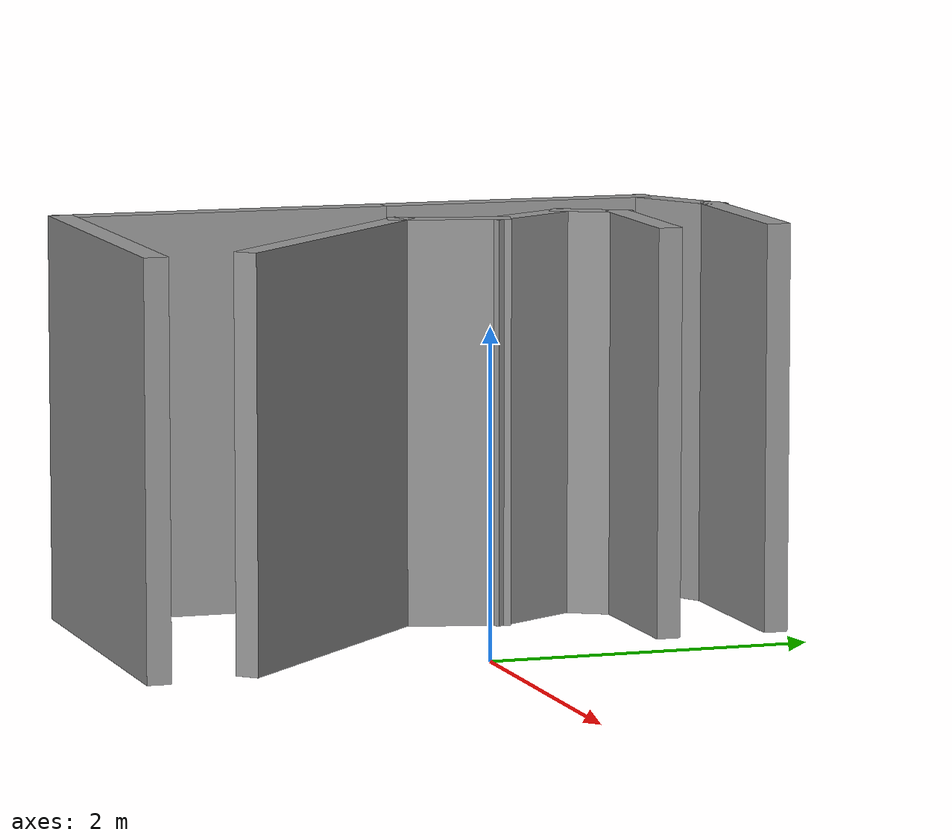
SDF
<?xml version='1.0'?>
<sdf version='1.6'>
  <model name='Untitled'>
    <pose frame=''>-1.03683 -0.037191 0 0 -0 0</pose>
    <link name='Wall_10'>
      <collision name='Wall_10_Collision'>
        <geometry>
          <box>
            <size>2 0.15 2.5</size>
          </box>
        </geometry>
        <pose frame=''>0 0 1.25 0 -0 0</pose>
      </collision>
      <visual name='Wall_10_Visual'>
        <pose frame=''>0 0 1.25 0 -0 0</pose>
        <geometry>
          <box>
            <size>2 0.15 2.5</size>
          </box>
        </geometry>
        <material>
          <script>
            <uri>file://media/materials/scripts/gazebo.material</uri>
            <name>Gazebo/Grey</name>
          </script>
          <ambient>1 1 1 1</ambient>
        </material>
      </visual>
      <pose frame=''>0.35664 -0.75882 0 0 -0 2.35619</pose>
    </link>
    <link name='Wall_12'>
      <collision name='Wall_12_Collision'>
        <geometry>
          <box>
            <size>2.26002 0.15 2.5</size>
          </box>
        </geometry>
        <pose frame=''>0 0 1.25 0 -0 0</pose>
      </collision>
      <visual name='Wall_12_Visual'>
        <pose frame=''>0 0 1.25 0 -0 0</pose>
        <geometry>
          <box>
            <size>2.26002 0.15 2.5</size>
          </box>
        </geometry>
        <material>
          <script>
            <uri>file://media/materials/scripts/gazebo.material</uri>
            <name>Gazebo/Grey</name>
          </script>
          <ambient>1 1 1 1</ambient>
        </material>
      </visual>
      <pose frame=''>0.01372 -2.01873 0 0 -0 3.14159</pose>
    </link>
    <link name='Wall_13'>
      <collision name='Wall_13_Collision'>
        <geometry>
          <box>
            <size>2.25 0.15 2.5</size>
          </box>
        </geometry>
        <pose frame=''>0 0 1.25 0 -0 0</pose>
      </collision>
      <visual name='Wall_13_Visual'>
        <pose frame=''>0 0 1.25 0 -0 0</pose>
        <geometry>
          <box>
            <size>2.25 0.15 2.5</size>
          </box>
        </geometry>
        <material>
          <script>
            <uri>file://media/materials/scripts/gazebo.material</uri>
            <name>Gazebo/Grey</name>
          </script>
          <ambient>1 1 1 1</ambient>
        </material>
      </visual>
      <pose frame=''>-1.04128 -0.958726 0 0 -0 1.5708</pose>
    </link>
    <link name='Wall_19'>
      <collision name='Wall_19_Collision'>
        <geometry>
          <box>
            <size>1.75 0.15 2.5</size>
          </box>
        </geometry>
        <pose frame=''>0 0 1.25 0 -0 0</pose>
      </collision>
      <visual name='Wall_19_Visual'>
        <pose frame=''>0 0 1.25 0 -0 0</pose>
        <geometry>
          <box>
            <size>1.75 0.15 2.5</size>
          </box>
        </geometry>
        <material>
          <script>
            <uri>file://media/materials/scripts/gazebo.material</uri>
            <name>Gazebo/Grey</name>
          </script>
          <ambient>1 1 1 1</ambient>
        </material>
      </visual>
      <pose frame=''>-1.04128 0.891274 0 0 -0 1.5708</pose>
    </link>
    <link name='Wall_21'>
      <collision name='Wall_21_Collision'>
        <geometry>
          <box>
            <size>0.75 0.15 2.5</size>
          </box>
        </geometry>
        <pose frame=''>0 0 1.25 0 -0 0</pose>
      </collision>
      <visual name='Wall_21_Visual'>
        <pose frame=''>0 0 1.25 0 -0 0</pose>
        <geometry>
          <box>
            <size>0.75 0.15 2.5</size>
          </box>
        </geometry>
        <material>
          <script>
            <uri>file://media/materials/scripts/gazebo.material</uri>
            <name>Gazebo/Grey</name>
          </script>
          <ambient>1 1 1 1</ambient>
        </material>
      </visual>
      <pose frame=''>-0.781472 1.84127 0 0 -0 0.523599</pose>
    </link>
    <link name='Wall_22'>
      <collision name='Wall_22_Collision'>
        <geometry>
          <box>
            <size>1.25 0.15 2.5</size>
          </box>
        </geometry>
        <pose frame=''>0 0 1.25 0 -0 0</pose>
      </collision>
      <visual name='Wall_22_Visual'>
        <pose frame=''>0 0 1.25 0 -0 0</pose>
        <geometry>
          <box>
            <size>1.25 0.15 2.5</size>
          </box>
        </geometry>
        <material>
          <script>
            <uri>file://media/materials/scripts/gazebo.material</uri>
            <name>Gazebo/Grey</name>
          </script>
          <ambient>1 1 1 1</ambient>
        </material>
      </visual>
      <pose frame=''>0.028335 1.99127 0 0 -0 0</pose>
    </link>
    <link name='Wall_24'>
      <collision name='Wall_24_Collision'>
        <geometry>
          <box>
            <size>0.75 0.15 2.5</size>
          </box>
        </geometry>
        <pose frame=''>0 0 1.25 0 -0 0</pose>
      </collision>
      <visual name='Wall_24_Visual'>
        <pose frame=''>0 0 1.25 0 -0 0</pose>
        <geometry>
          <box>
            <size>0.75 0.15 2.5</size>
          </box>
        </geometry>
        <material>
          <script>
            <uri>file://media/materials/scripts/gazebo.material</uri>
            <name>Gazebo/Grey</name>
          </script>
          <ambient>1 1 1 1</ambient>
        </material>
      </visual>
      <pose frame=''>-0.219788 0.185031 0 0 -0 1.309</pose>
    </link>
    <link name='Wall_25'>
      <collision name='Wall_25_Collision'>
        <geometry>
          <box>
            <size>0.75 0.15 2.5</size>
          </box>
        </geometry>
        <pose frame=''>0 0 1.25 0 -0 0</pose>
      </collision>
      <visual name='Wall_25_Visual'>
        <pose frame=''>0 0 1.25 0 -0 0</pose>
        <geometry>
          <box>
            <size>0.75 0.15 2.5</size>
          </box>
        </geometry>
        <material>
          <script>
            <uri>file://media/materials/scripts/gazebo.material</uri>
            <name>Gazebo/Grey</name>
          </script>
          <ambient>1 1 1 1</ambient>
        </material>
      </visual>
      <pose frame=''>-0.292142 0.734617 0 0 -0 2.0944</pose>
    </link>
    <link name='Wall_26'>
      <collision name='Wall_26_Collision'>
        <geometry>
          <box>
            <size>0.5 0.15 2.5</size>
          </box>
        </geometry>
        <pose frame=''>0 0 1.25 0 -0 0</pose>
      </collision>
      <visual name='Wall_26_Visual'>
        <pose frame=''>0 0 1.25 0 -0 0</pose>
        <geometry>
          <box>
            <size>0.5 0.15 2.5</size>
          </box>
        </geometry>
        <material>
          <script>
            <uri>file://media/materials/scripts/gazebo.material</uri>
            <name>Gazebo/Grey</name>
          </script>
          <ambient>1 1 1 1</ambient>
        </material>
      </visual>
      <pose frame=''>-0.354642 1.14598 0 0 -0 1.0472</pose>
    </link>
    <link name='Wall_27'>
      <collision name='Wall_27_Collision'>
        <geometry>
          <box>
            <size>1 0.15 2.5</size>
          </box>
        </geometry>
        <pose frame=''>0 0 1.25 0 -0 0</pose>
      </collision>
      <visual name='Wall_27_Visual'>
        <pose frame=''>0 0 1.25 0 -0 0</pose>
        <geometry>
          <box>
            <size>1 0.15 2.5</size>
          </box>
        </geometry>
        <material>
          <script>
            <uri>file://media/materials/scripts/gazebo.material</uri>
            <name>Gazebo/Grey</name>
          </script>
          <ambient>1 1 1 1</ambient>
        </material>
      </visual>
      <pose frame=''>0.157858 1.29753 0 0 -0 0</pose>
    </link>
    <static>1</static>
  </model>
</sdf>
